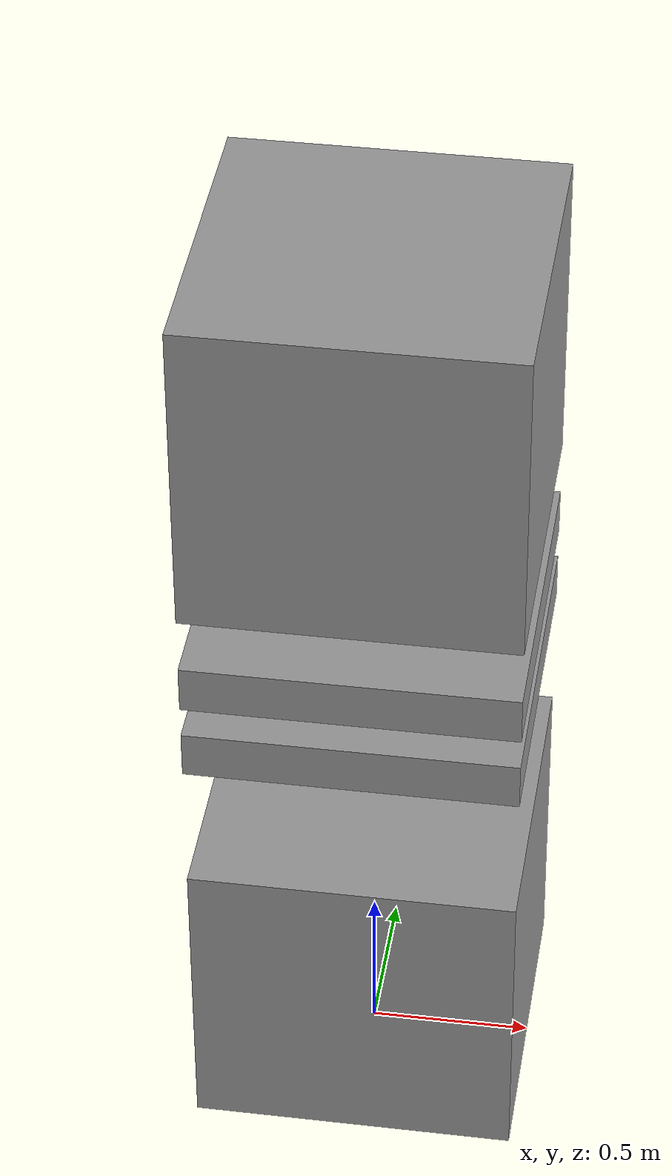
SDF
<?xml version='1.0'?>
<sdf version='1.6'>
  <model name='gearbox_demo'>
    <pose>0 0 1.5 0 1.5707963267948966 0</pose>
    <link name='input_body'>
      <pose frame=''>1 0 0 0 0 0</pose>
      <inertial>
        <mass>1</mass>
        <inertia>
          <ixx>0.16666666666666666</ixx>
          <ixy>0</ixy>
          <ixz>0</ixz>
          <iyy>0.16666666666666666</iyy>
          <iyz>0</iyz>
          <izz>0.16666666666666666</izz>
        </inertia>
      </inertial>
      <visual name='visual'>
        <geometry>
          <box>
            <size>1 1 1</size>
          </box>
        </geometry>
        <material>
          <script>
            <uri>file://media/materials/scripts/gazebo.material</uri>
            <name>Gazebo/Grey</name>
          </script>
        </material>
      </visual>
      <collision name='collision'>
        <geometry>
          <box>
            <size>1 1 1</size>
          </box>
        </geometry>
      </collision>
    </link>
    <link name='output_body'>
      <pose frame=''>-1 0 0 0 0 0</pose>
      <inertial>
        <mass>1</mass>
        <inertia>
          <ixx>0.16666666666666666</ixx>
          <ixy>0</ixy>
          <ixz>0</ixz>
          <iyy>0.16666666666666666</iyy>
          <iyz>0</iyz>
          <izz>0.16666666666666666</izz>
        </inertia>
      </inertial>
      <visual name='visual'>
        <geometry>
          <box>
            <size>1 1 1</size>
          </box>
        </geometry>
        <material>
          <script>
            <uri>file://media/materials/scripts/gazebo.material</uri>
            <name>Gazebo/Grey</name>
          </script>
        </material>
      </visual>
      <collision name='collision'>
        <geometry>
          <box>
            <size>1 1 1</size>
          </box>
        </geometry>
      </collision>
    </link>
    <link name='motor_shaft'>
      <pose frame=''>0 0 0 0 0 0</pose>
      <inertial>
        <mass>0.15</mass>
        <inertia>
          <ixx>0.024999999999999998</ixx>
          <ixy>0</ixy>
          <ixz>0</ixz>
          <iyy>0.01278125</iyy>
          <iyz>0</iyz>
          <izz>0.01278125</izz>
        </inertia>
      </inertial>
      <visual name='visual'>
        <geometry>
          <box>
            <size>0.15 1 1</size>
          </box>
        </geometry>
        <material>
          <script>
            <uri>file://media/materials/scripts/gazebo.material</uri>
            <name>Gazebo/Grey</name>
          </script>
        </material>
      </visual>
      <collision name='collision'>
        <geometry>
          <box>
            <size>0.15 1 1</size>
          </box>
        </geometry>
      </collision>
    </link>
    <link name='output_shaft'>
      <pose frame=''>-0.25 0 0 0 0 0</pose>
      <inertial>
        <mass>0.15</mass>
        <inertia>
          <ixx>0.024999999999999998</ixx>
          <ixy>0</ixy>
          <ixz>0</ixz>
          <iyy>0.01278125</iyy>
          <iyz>0</iyz>
          <izz>0.01278125</izz>
        </inertia>
      </inertial>
      <visual name='visual'>
        <geometry>
          <box>
            <size>0.15 1 1</size>
          </box>
        </geometry>
        <material>
          <script>
            <uri>file://media/materials/scripts/gazebo.material</uri>
            <name>Gazebo/Grey</name>
          </script>
        </material>
      </visual>
      <collision name='collision'>
        <geometry>
          <box>
            <size>0.15 1 1</size>
          </box>
        </geometry>
      </collision>
    </link>
    <joint name='input_joint' type='revolute'>
      <parent>input_body</parent>
      <child>motor_shaft</child>
      <pose frame=''>0 0 0 0 -0 0</pose>
      <axis>
        <xyz>1 0 0</xyz>
        <dynamics>
          <spring_reference>0</spring_reference>
          <spring_stiffness>0</spring_stiffness>
          <damping>1</damping>
          <friction>0</friction>
        </dynamics>
      </axis>
    </joint>
    <joint name='reduction_joint' type='revolute'>
      <parent>motor_shaft</parent>
      <child>output_shaft</child>
      <pose frame=''>0 0 0 0 -0 0</pose>
      <axis>
        <xyz>1 0 0</xyz>
        <dynamics>
          <spring_reference>0</spring_reference>
          <spring_stiffness>0</spring_stiffness>
          <damping>1</damping>
          <friction>0</friction>
        </dynamics>
      </axis>
    </joint>
    <joint name='compliant_joint' type='revolute'>
      <parent>output_shaft</parent>
      <child>output_body</child>
      <pose frame=''>0 0 0 0 -0 0</pose>
      <axis>
        <xyz>1 0 0</xyz>
        <dynamics>
          <spring_reference>0</spring_reference>
          <spring_stiffness>1</spring_stiffness>
          <damping>0</damping>
          <friction>0</friction>
        </dynamics>
      </axis>
    </joint>
    <joint name='shaft_gearbox' type='gearbox'>
      <parent>motor_shaft</parent>
      <child>output_shaft</child>
      <gearbox_ratio>-0.1</gearbox_ratio>
      <gearbox_reference_body>input_body</gearbox_reference_body>
      <axis>
        <xyz>1 0 0</xyz>
      </axis>
      <axis2>
        <xyz>1 0 0</xyz>
      </axis2>
    </joint>
  </model>
</sdf>
